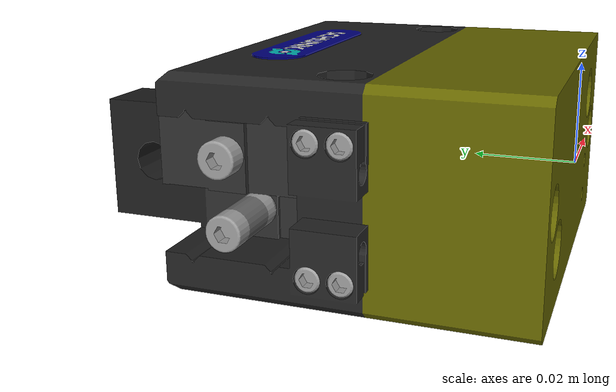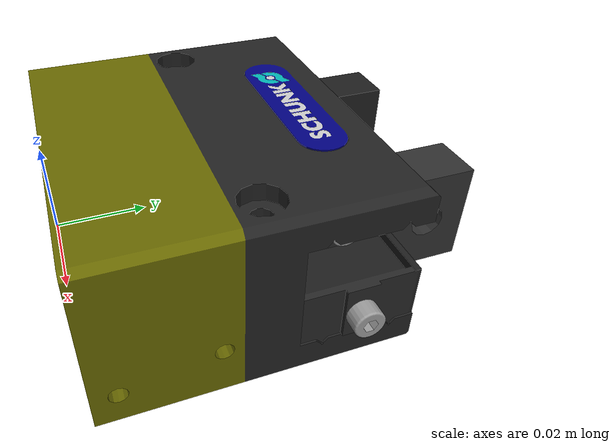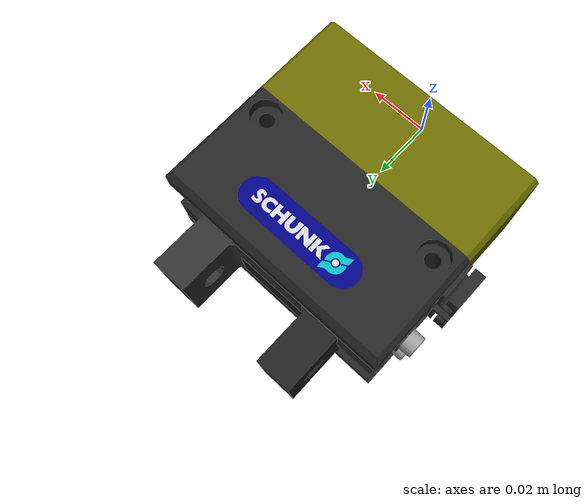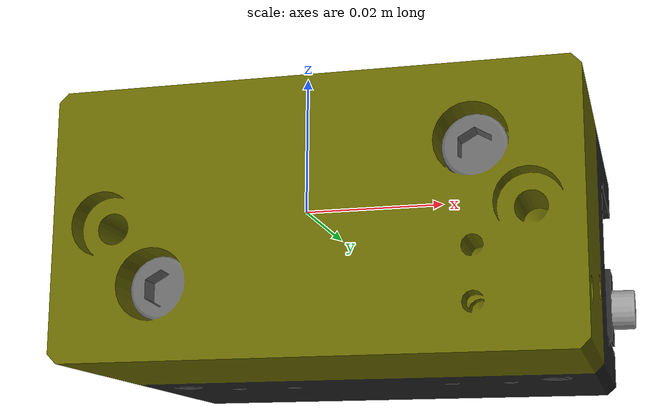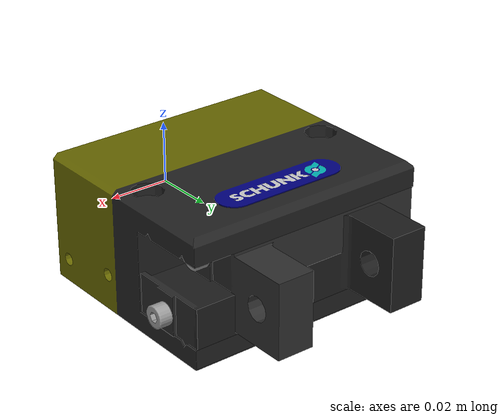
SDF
<?xml version="1.0" ?>
<sdf version="1.4">
  <model name="schunk_mpg_80">
    <link name="base">
      <self_collide>false</self_collide>
      <inertial>
        <pose>0 0.035 0 0 0 0</pose>
        <inertia>
          <ixx>0.00053312</ixx>
          <ixy>0</ixy>
          <ixz>0</ixz>
          <iyy>0.00065312</iyy>
          <iyz>0</iyz>
          <izz>0.000904</izz>
        </inertia>
        <mass>0.96</mass>
      </inertial>
      <visual name="base_geom_visual">
        <pose>0 0 0 0 0 0</pose>
        <geometry>
          <mesh>
            <uri>model://schunk_mpg_80/meshes/visual/SCHUNK_MPG-80_BASE.dae</uri>
          </mesh>
        </geometry>
      </visual>
      <collision name="base_geom_collision">
        <pose>0 0.035 0 0 0 0</pose>
        <geometry>
          <box>
            <size>0.08 0.07 0.042</size>
          </box>
        </geometry>
      </collision>
      <collision name="base_tab1_geom_collision">
        <pose>-0.043 0.036 0.009 0 0 0</pose>
        <geometry>
          <box>
            <size>0.006 0.012 0.012</size>
          </box>
        </geometry>
      </collision>
      <collision name="base_tab2_geom_collision">
        <pose>-0.043 0.036 -0.009 0 0 0</pose>
        <geometry>
          <box>
            <size>0.006 0.012 0.012</size>
          </box>
        </geometry>
      </collision>
    </link>
    <link name="l_finger">
      <self_collide>true</self_collide>
      <inertial>
        <pose>-0.0205 0.0798 0 0 0 0</pose>
        <inertia>
          <ixx>0.0000095236</ixx>
          <ixy>0</ixy>
          <ixz>0</ixz>
          <iyy>0.0000072</iyy>
          <iyz>0</iyz>
          <izz>0.0000052036</izz>
        </inertia>
        <mass>0.12</mass>
      </inertial>
      <visual name="l_finger_geom_visual">
        <pose>0 0 0 0 0 0</pose>
        <geometry>
          <mesh>
            <uri>model://schunk_mpg_80/meshes/visual/SCHUNK_MPG-80_LEFT_FINGER.dae</uri>
          </mesh>
        </geometry>
      </visual>
      <collision name="l_finger_tip_geom_collision">
        <pose>-0.0205 0.0798 0 0 0 0</pose>
        <geometry>
          <box>
            <size>0.012 0.0194 0.024</size>
          </box>
        </geometry>
      </collision>
    </link>
    <link name="r_finger">
      <self_collide>true</self_collide>
      <inertial>
        <pose>0.0205 0.0798 0 0 0 0</pose>
        <inertia>
          <ixx>0.0000095236</ixx>
          <ixy>0</ixy>
          <ixz>0</ixz>
          <iyy>0.0000072</iyy>
          <iyz>0</iyz>
          <izz>0.0000052036</izz>
        </inertia>
        <mass>0.12</mass>
      </inertial>
      <visual name="r_finger_geom_visual">
        <pose>0 0 0 0 0 0</pose>
        <geometry>
          <mesh>
            <uri>model://schunk_mpg_80/meshes/visual/SCHUNK_MPG-80_RIGHT_FINGER.dae</uri>
          </mesh>
        </geometry>
      </visual>
      <collision name="r_finger_tip_geom_collision">
        <pose>0.0205 0.0798 0 0 0 0</pose>
        <geometry>
          <box>
            <size>0.012 0.0194 0.024</size>
          </box>
        </geometry>
      </collision>
    </link>

    <joint name="l_finger_actuator" type="prismatic">
      <parent>base</parent>
      <child>l_finger</child>
      <axis>
        <dynamics>
          <damping>0.0</damping>
          <friction>0.0</friction>
        </dynamics>
        <xyz>1 0 0</xyz>
        <limit>
          <lower>0</lower>
          <upper>0.014</upper>
        </limit>
      </axis>
    </joint>

    <joint name="r_finger_actuator" type="prismatic">
      <parent>base</parent>
      <child>r_finger</child>
      <axis>
        <dynamics>
          <damping>0.0</damping>
          <friction>0.0</friction>
        </dynamics>
        <xyz>1 0 0</xyz>
        <limit>
          <lower>-0.014</lower>
          <upper>0</upper>
        </limit>
      </axis>
    </joint>

    <!-- Fixed base -->
    <joint name="fixed_joint" type="revolute">
      <parent>world</parent>
      <child>base</child>
      <axis>
        <xyz>0 0 1</xyz>
        <limit>
          <lower>0</lower>
          <upper>0</upper>
        </limit>
      </axis>
    </joint>

  </model>
</sdf>
